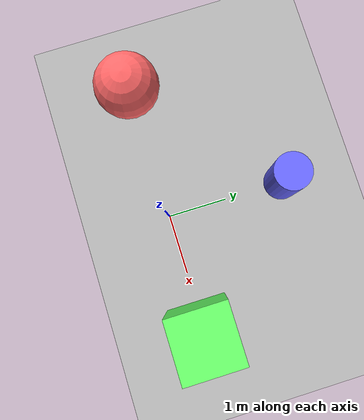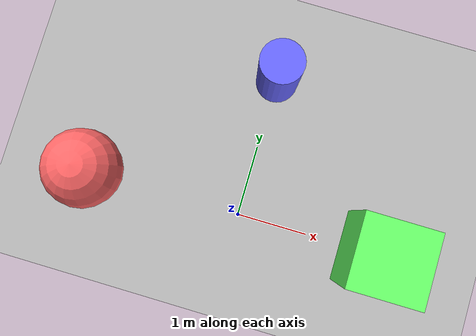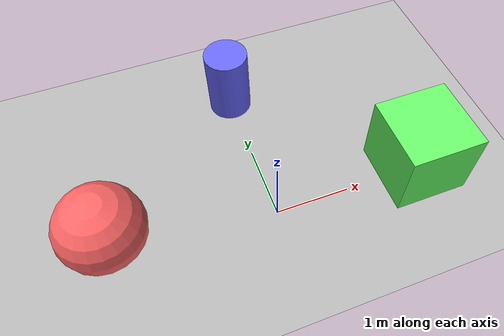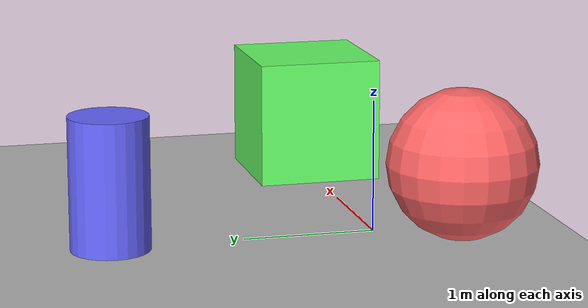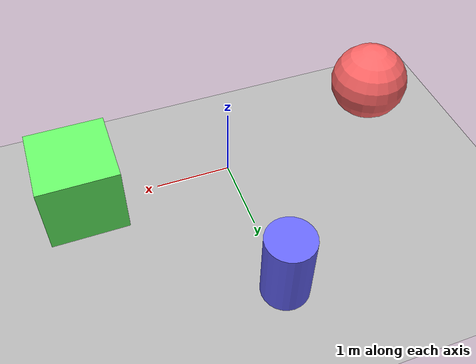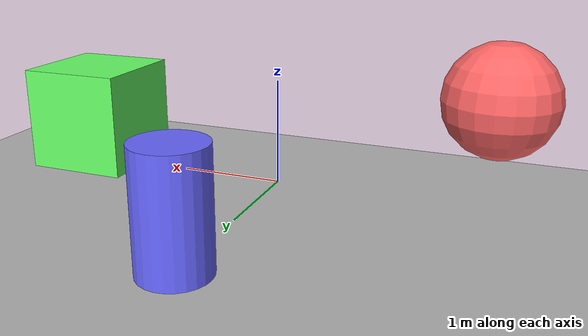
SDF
<?xml version="1.0" ?>
<sdf version="1.6">
  <world name="simple_world">
    <physics name="default_physics" default="1" type="ode">
      <gravity>0 0 -9.81</gravity>
      <max_step_size>0.001</max_step_size>
      <real_time_factor>1.0</real_time_factor>
      <real_time_update_rate>1000</real_time_update_rate>
    </physics>

    <scene>
      <ambient>0.4 0.4 0.4 1.0</ambient>
      <background>0.7 0.7 0.7 1.0</background>
      <shadows>true</shadows>
    </scene>

    <!-- Ground plane -->
    <model name="ground_plane">
      <static>true</static>
      <link name="ground_link">
        <collision name="ground_collision">
          <geometry>
            <plane>
              <normal>0 0 1</normal>
              <size>10 10</size>
            </plane>
          </geometry>
        </collision>
        <visual name="ground_visual">
          <geometry>
            <plane>
              <normal>0 0 1</normal>
              <size>10 10</size>
            </plane>
          </geometry>
          <material>
            <ambient>0.3 0.3 0.3 1.0</ambient>
            <diffuse>0.7 0.7 0.7 1.0</diffuse>
          </material>
        </visual>
      </link>
    </model>

    <!-- Simple box -->
    <model name="test_box">
      <pose>2 0 0.5 0 0 0</pose>
      <static>false</static>
      <link name="box_link">
        <inertial>
          <mass>1.0</mass>
          <inertia>
            <ixx>0.16</ixx>
            <ixy>0</ixy>
            <ixz>0</ixz>
            <iyy>0.16</iyy>
            <iyz>0</iyz>
            <izz>0.16</izz>
          </inertia>
        </inertial>
        <collision name="box_collision">
          <geometry>
            <box>
              <size>1 1 1</size>
            </box>
          </geometry>
        </collision>
        <visual name="box_visual">
          <geometry>
            <box>
              <size>1 1 1</size>
            </box>
          </geometry>
          <material>
            <ambient>0.2 0.8 0.2 1.0</ambient>
            <diffuse>0.4 1.0 0.4 1.0</diffuse>
          </material>
        </visual>
      </link>
    </model>

    <!-- Sphere -->
    <model name="test_sphere">
      <pose>-2 0 1 0 0 0</pose>
      <static>false</static>
      <link name="sphere_link">
        <inertial>
          <mass>0.5</mass>
          <inertia>
            <ixx>0.1</ixx>
            <ixy>0</ixy>
            <ixz>0</ixz>
            <iyy>0.1</iyy>
            <iyz>0</iyz>
            <izz>0.1</izz>
          </inertia>
        </inertial>
        <collision name="sphere_collision">
          <geometry>
            <sphere>
              <radius>0.5</radius>
            </sphere>
          </geometry>
        </collision>
        <visual name="sphere_visual">
          <geometry>
            <sphere>
              <radius>0.5</radius>
            </sphere>
          </geometry>
          <material>
            <ambient>0.8 0.2 0.2 1.0</ambient>
            <diffuse>1.0 0.4 0.4 1.0</diffuse>
          </material>
        </visual>
      </link>
    </model>

    <!-- Cylinder -->
    <model name="test_cylinder">
      <pose>0 2 0.5 0 0 0</pose>
      <static>false</static>
      <link name="cylinder_link">
        <inertial>
          <mass>0.8</mass>
          <inertia>
            <ixx>0.12</ixx>
            <ixy>0</ixy>
            <ixz>0</ixz>
            <iyy>0.12</iyy>
            <iyz>0</iyz>
            <izz>0.08</izz>
          </inertia>
        </inertial>
        <collision name="cylinder_collision">
          <geometry>
            <cylinder>
              <radius>0.3</radius>
              <length>1.0</length>
            </cylinder>
          </geometry>
        </collision>
        <visual name="cylinder_visual">
          <geometry>
            <cylinder>
              <radius>0.3</radius>
              <length>1.0</length>
            </cylinder>
          </geometry>
          <material>
            <ambient>0.2 0.2 0.8 1.0</ambient>
            <diffuse>0.4 0.4 1.0 1.0</diffuse>
          </material>
        </visual>
      </link>
    </model>

    <!-- Example with mesh (if you have a mesh file) -->

  </world>
</sdf>
